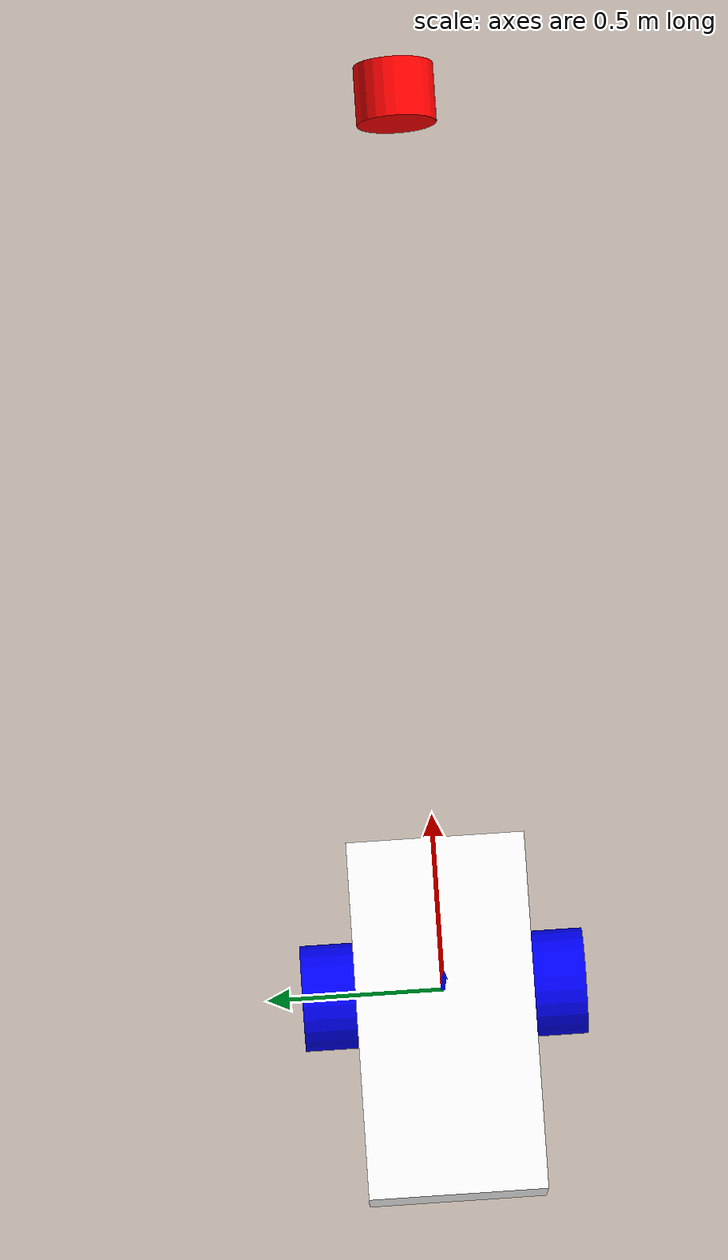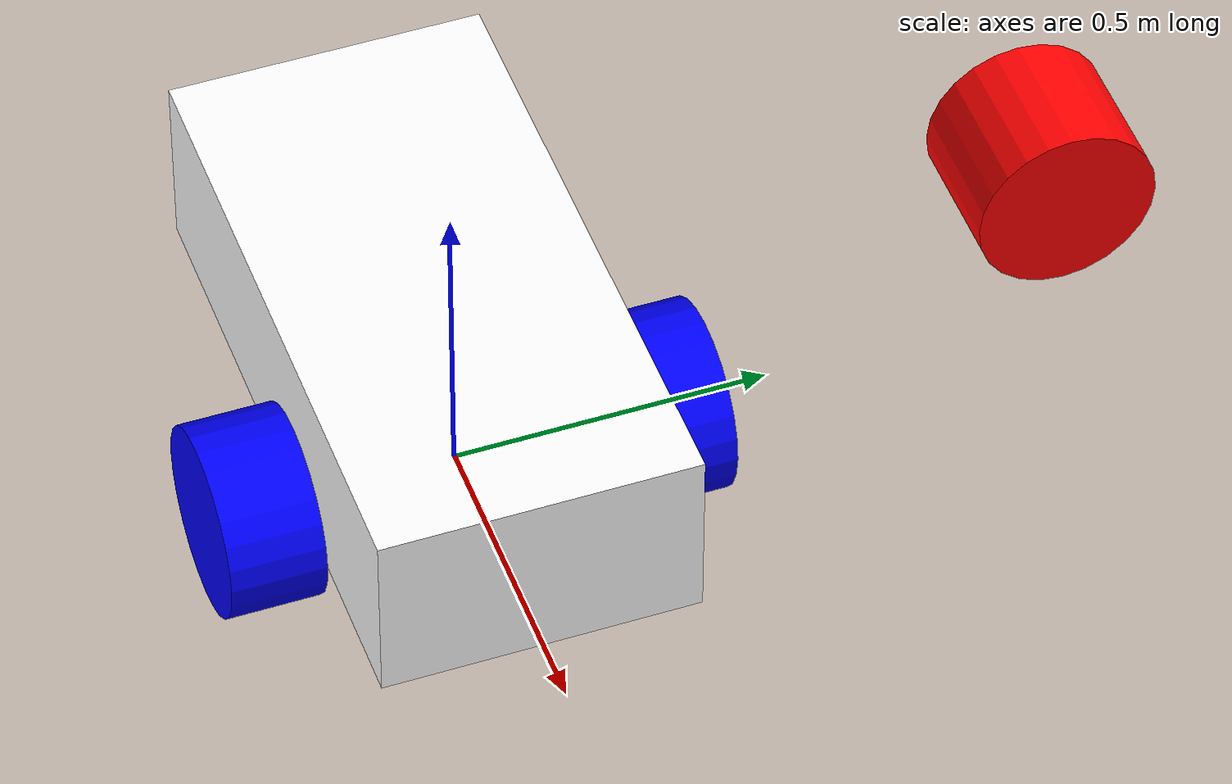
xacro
<?xml version="1.0"?>
<robot xmlns:xacro="http://www.ros.org/wiki/xacro" name="urdf_tutorial">
    <xacro:arg name="gpu" default="false"/>
    <xacro:property name="gpu" value="$(arg gpu)" />
    <!-- MACROS -->
    <xacro:include filename="macros.xacro"/>

    <!-- COLOR -->
    <material name="white">
        <color rgba="1 1 1 1" />
    </material>

    <material name="blue">
        <color rgba="0 0 1 1"/>
    </material>

    <material name="black">
        <color rgba="0 0 0 1"/>
    </material>

    <material name="red">
        <color rgba="1 0 0 1"/>
    </material>

    <!-- BASE LINK -->
    <link name="base_link">
    </link>

    <!-- BODY LINK -->
    <joint name="body_joint" type="fixed">
        <parent link="base_link"/>
        <child link="body"/>
        <origin xyz="-0.6 0 0"/>
    </joint>

    <link name="body">
        <visual>
            <origin xyz="0.5 0 0.15"/>
            <geometry>
                <box size="1.0 0.5 0.3"/>
            </geometry>
            <material name="white"/>
        </visual>
        <collision>
            <origin xyz="0.5 0 0.15"/>
            <geometry>
                <box size="1.0 0.5 0.3"/>
            </geometry>
        </collision>
        <xacro:inertial_box mass="62.5" x="1.0" y="0.5" z="0.3">
            <origin xyz="0.3 0 0.15" rpy="0 0 0"/>
        </xacro:inertial_box>
    </link>

    <gazebo reference="body">
        <material>Gazebo/White</material>
    </gazebo>

    <!-- LEFT WHEEL LINK -->
    <joint name="left_wheel_joint" type="continuous">
        <parent link="base_link"/>
        <child link="left_wheel"/>
        <origin xyz="0 0.325 0" rpy="-${pi/2} 0 0" />
        <axis xyz="0 0 1"/>
    </joint>

    <link name="left_wheel">
        <visual>
            <geometry>
                <cylinder radius="0.15" length="0.15"/>
            </geometry>
            <material name="blue"/>
        </visual>
        <collision>
            <geometry>
                <cylinder radius="0.15" length="0.15"/>
            </geometry>
        </collision>
        <xacro:inertial_cylinder mass="2.5" length="0.15" radius="0.15">
            <origin xyz="0 0 0" rpy="0 0 0"/>
        </xacro:inertial_cylinder>
    </link>

    <gazebo reference="left_wheel">
        <material>Gazebo/Black</material>
    </gazebo>

    <!-- RIGHT WHEEL LINK -->
    <joint name="right_wheel_joint" type="continuous">
        <parent link="base_link"/>
        <child link="right_wheel"/>
        <origin xyz="0 -0.325 0" rpy="${pi/2} 0 0" />
        <axis xyz="0 0 -1"/>
    </joint>

    <link name="right_wheel">
        <visual>
            <geometry>
                <cylinder radius="0.15" length="0.15"/>
            </geometry>
            <material name="blue"/>
        </visual>
        <collision>
            <geometry>
                <cylinder radius="0.15" length="0.15"/>
            </geometry>
        </collision>
        <xacro:inertial_cylinder mass="2.5" length="0.15" radius="0.15">
            <origin xyz="0 0 0" rpy="0 0 0"/>
        </xacro:inertial_cylinder>
    </link>

    <gazebo reference="right_wheel">
        <material>Gazebo/Black</material>
    </gazebo>

    <!-- CASTER WHEEL LINK -->
    <joint name="caster_wheel_joint" type="fixed">
        <parent link="body"/>
        <child link="caster_wheel"/>
        <origin xyz="0.15 0 0"/>
    </joint>

    <link name="caster_wheel">
        <visual>
            <geometry>
                <sphere radius="0.15"/>
            </geometry>
            <material name="black"/>
        </visual>
        <collision>
            <geometry>
                <sphere radius="0.15"/>
            </geometry>
        </collision>
        <xacro:inertial_sphere mass="0.5" radius="0.15">
            <origin xyz="0 0 0" rpy="0 0 0"/>
        </xacro:inertial_sphere>
    </link>

    <gazebo reference="caster_wheel">
        <material>Gazebo/Blue</material>

        <mu1 value="0.001"/>
        <mu2 value="0.001"/>
    </gazebo>

    <!-- LiDAR -->
    <joint name="lidar_joint" type="fixed">
        <parent link="body"/>
        <child link="laser_frame"/>
        <origin xyz="2.6 0 2.5" rpy="0 1.57 0"/>
    </joint>

    <link name="laser_frame">
        <visual>
            <geometry>
                <cylinder radius="0.1" length="0.15"/>
            </geometry>
            <material name="red"/>
        </visual>
        <collision>
            <geometry>
                <cylinder radius="0.1" length="0.15"/>
            </geometry>
        </collision>
    </link>

    <!-- Velodyne LiDAR 매크로 호출 -->
    <xacro:include filename="vlp.xacro"/>

    <!-- GAZEBO -->
    <xacro:include filename="gazebo.xacro"/>

</robot>
